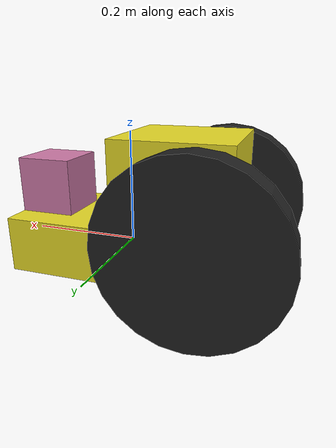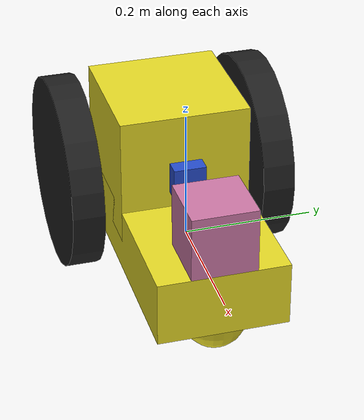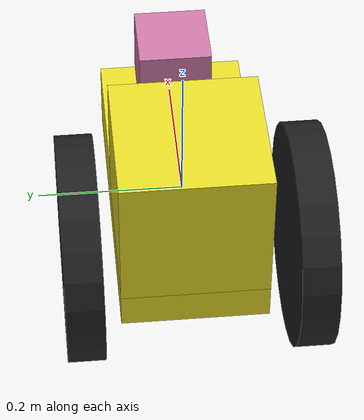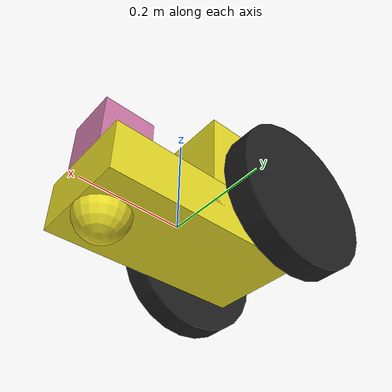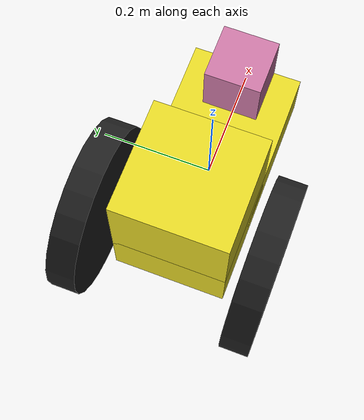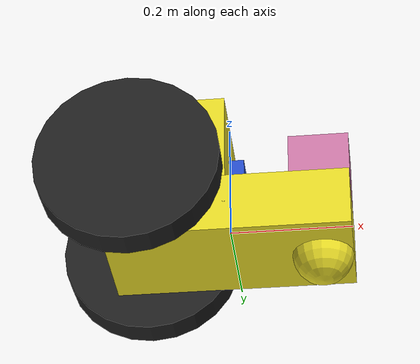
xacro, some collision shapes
<?xml version='1.0'?>

<robot name="my_robot" xmlns:xacro="http://www.ros.org/wiki/xacro">

  <xacro:include filename="$(find map_my_world)/urdf/my_robot.gazebo" />
  <xacro:property name="wheel_radius" value="0.15" />
  <xacro:property name="wheel_length" value="0.05" />

  <link name="robot_footprint"></link>

  <joint name="robot_footprint_joint" type="fixed">
    <origin xyz="0 0 0" rpy="0 0 0" />
    <parent link="robot_footprint"/>
    <child link="chassis" />
  </joint>

  <link name='chassis'>
    <pose>0 0 0.1 0 0 0</pose>

    <inertial>
      <mass value="15.0"/>
      <origin xyz="-0.1 0 0" rpy=" 0 0 0"/>
      <inertia
          ixx="0.1" ixy="0" ixz="0"
          iyy="0.1" iyz="0"
          izz="0.1"
      />
    </inertial>

    <collision name='collision'>
      <origin xyz="0 0 0" rpy=" 0 0 0"/>
      <geometry>
        <box size=".4 .2 .1"/>
      </geometry>
    </collision>

    <visual name='chassis_visual'>
      <origin xyz="0 0 0" rpy=" 0 0 0"/>
      <geometry>
        <box size=".4 .2 .1"/>
      </geometry>
    </visual>

    <collision name='upper_box_collision'>
      <origin xyz="-0.1 0 .1" rpy=" 0 0 0"/>
      <geometry>
        <box size=".2 .2 .2"/>
      </geometry>
    </collision>

    <visual>
      <origin xyz="-0.1 0 .1" rpy=" 0 0 0"/>
      <geometry>
        <box size=".2 .2 .2"/>
      </geometry>
    </visual>

    <collision name='front_caster_collision'>
      <origin xyz="0.15 0 -0.05" rpy=" 0 0 0"/>
      <geometry>
        <sphere radius="0.0499"/>
      </geometry>
    </collision>

    <visual name='front_caster_visual'>
      <origin xyz="0.15 0 -0.05" rpy=" 0 0 0"/>
      <geometry>
        <sphere radius="0.05"/>
      </geometry>
    </visual>

  </link>

  <link name='left_wheel'>
    <collision name='left_wheel_collision'>
      <origin xyz="0 0 0" rpy=" 0 1.5707 1.5707"/>
      <geometry>
        <cylinder radius="0.15" length="0.05"/>
      </geometry>
    </collision>

    <visual name='left_wheel_visual'>
      <origin xyz="0 0 0" rpy=" 0 1.5707 1.5707"/>
      <geometry>
	<cylinder radius="${wheel_radius}" length="${wheel_length}"/>
      </geometry>
    </visual>

    <inertial>
      <mass value="5"/>
      <origin xyz="0 0 0" rpy=" 0 1.5707 1.5707"/>
      <inertia
          ixx="0.1" ixy="0" ixz="0"
          iyy="0.1" iyz="0"
          izz="0.1"
      />
    </inertial>
  </link>

  <link name='right_wheel'>
    <collision name='right_wheel_collision'>
      <origin xyz="0 0 0" rpy=" 0 1.5707 1.5707"/>
      <geometry>
	<cylinder radius="${wheel_radius}" length="${wheel_length}"/>
      </geometry>
    </collision>

    <visual>
      <origin xyz="0 0 0" rpy=" 0 1.5707 1.5707"/>
      <geometry>
        <cylinder radius="0.15" length="0.05"/>
      </geometry>
    </visual>

    <inertial>
      <mass value="5"/>
      <origin xyz="0 0 0" rpy=" 0 1.5707 1.5707"/>
      <inertia
          ixx="0.1" ixy="0" ixz="0"
          iyy="0.1" iyz="0"
          izz="0.1"
      />
    </inertial>
  </link>

  <joint type="continuous" name="left_wheel_hinge">
    <origin xyz="-0.15 0.15 0.05" rpy="0 0 0"/>
    <child link="left_wheel"/>
    <parent link="chassis"/>
    <axis xyz="0 1 0" rpy="0 0 0"/>
    <limit effort="10000" velocity="1000"/>
    <dynamics damping="1.0" friction="1.0"/>
  </joint>

  <joint type="continuous" name="right_wheel_hinge">
    <origin xyz="-0.15 -0.15 0.05" rpy="0 0 0"/>
    <child link="right_wheel"/>
    <parent link="chassis"/>
    <axis xyz="0 1 0" rpy="0 0 0"/>
    <limit effort="10000" velocity="1000"/>
    <dynamics damping="1.0" friction="1.0"/>
  </joint>

  <link name='camera'>
    <inertial>
      <origin xyz="0 0 0" rpy="0 0 0"/>
      <mass value="0.1"/>
      <inertia
          ixx="1e-6" ixy="0" ixz="0"
          iyy="1e-6" iyz="0"
          izz="1e-6"
      />
    </inertial>

    <visual name='camera_visual'>
      <origin xyz="-.2 0 .1" rpy="0 0 0"/>
      <geometry>
        <box size=".05 .05 .05"/>
      </geometry>
    </visual>

    <collision name='camera_collision'>
      <origin xyz="0 0 0" rpy="0 0 0"/>
      <geometry>
        <box size=".05 .05 .05"/>
      </geometry>
    </collision>
  </link>

  <joint type="fixed" name="camera_joint">
    <origin xyz="0.2 0 0" rpy="0 0 0"/>
    <child link="camera"/>
    <parent link="chassis"/>
    <axis xyz="0 1 0"/>
  </joint>

  <joint name="camera_optical_joint" type="fixed">
    <origin xyz="0 0 0" rpy="-1.5707 0 -1.5707"/>
    <parent link="camera"/>
    <child link="camera_link_optical"/>
  </joint>

  <link name="camera_link_optical">
  </link>

  <link name='hokuyo'>
    <inertial>
      <origin xyz="0 0 0" rpy="0 0 0"/>
      <mass value="1e-5"/>
      <inertia
          ixx="1e-6" ixy="0" ixz="0"
          iyy="1e-6" iyz="0"
          izz="1e-6"
      />
    </inertial>

    <visual name='hokuyo_visual'>
      <origin xyz="-0.2 0 0.1" rpy="0 0 0"/>
      <geometry>
        <mesh filename="package://map_my_world/meshes/hokuyo.dae"/>
      </geometry>
    </visual>

    <collision name='hokuyo_collision'>
      <origin xyz="0 0 0" rpy="0 0 0"/>
      <geometry>
        <box size=".1 .1 .1"/>
      </geometry>
    </collision>
  </link>

  <joint type="fixed" name="hokuyo_joint">
    <origin xyz="0.15 0 0.1" rpy="0 0 0"/>
    <child link="hokuyo"/>
    <parent link="chassis"/>
    <axis xyz="0 1 0"/>
  </joint>

  <gazebo reference="left_wheel">
     <material>Gazebo/Black</material>
  </gazebo>
  <gazebo reference="right_wheel">
     <material>Gazebo/Black</material>
  </gazebo>
  <gazebo reference="camera">
     <material>Gazebo/Blue</material>
  </gazebo>
  <gazebo reference="chassis">
     <material>Gazebo/Yellow</material>
  </gazebo>
</robot>
